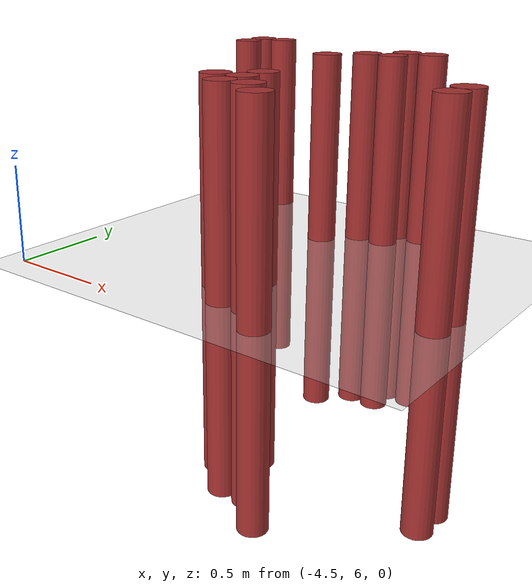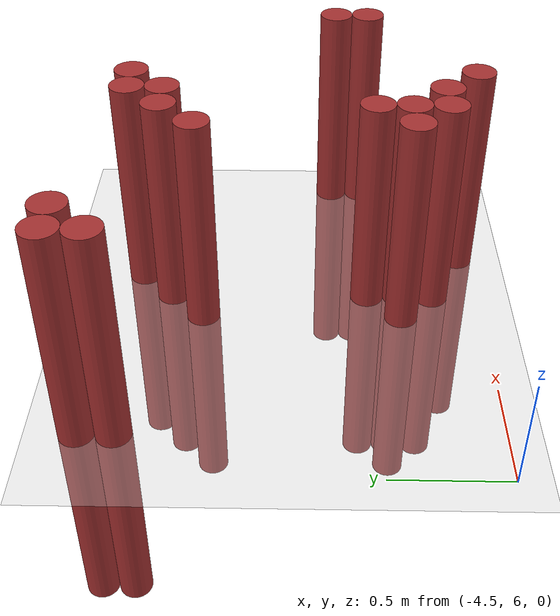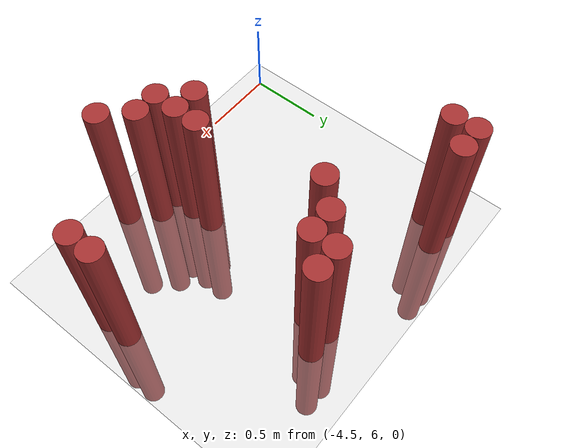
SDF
<sdf version="1.6">
 <world name="default">
  <model name="ground_plane">
   <static>1</static>
   <link name="link">
    <collision name="collision">
     <geometry><plane><normal>0 0 1</normal><size>100 100</size></plane></geometry>
     <surface><friction><ode><mu>100</mu><mu2>50</mu2></ode></friction></surface>
    </collision>
    <visual name="visual">
     <cast_shadows>0</cast_shadows>
     <geometry><plane><normal>0 0 1</normal><size>100 100</size></plane></geometry>
     <material>
      <script><uri>file://media/materials/scripts/gazebo.material</uri><name>Gazebo/Grey</name></script>
     </material>
    </visual>
   </link>
  </model>
  <model name="unit_cylinder_130">
   <static>1</static>
   <pose>-4.275000 7.575000 0.000000 0.000000 0.000000 0.000000</pose>
   <link name="link">
    <inertial>
     <mass>1</mass>
     <inertia><ixx>0.145833</ixx><ixy>0</ixy><ixz>0</ixz><iyy>0.145833</iyy><iyz>0</iyz><izz>0.125</izz></inertia>
    </inertial>
    <collision name="collision">
     <geometry><cylinder><radius>0.075000</radius><length>2</length></cylinder></geometry>
    </collision>
    <visual name="visual">
     <geometry><cylinder><radius>0.075000</radius><length>2</length></cylinder></geometry>
     <material>
      <ambient>0.648000 0.192000 0.192000 1</ambient>
      <diffuse>0.648000 0.192000 0.192000 1</diffuse>
     </material>
     <material>
      <script><name>Gazebo/Grey</name><uri>file://media/materials/scripts/gazebo.material</uri></script>
     </material>
    </visual>
   </link>
  </model>
  <model name="unit_cylinder_131">
   <static>1</static>
   <pose>-4.275000 7.725000 0.000000 0.000000 0.000000 0.000000</pose>
   <link name="link">
    <inertial>
     <mass>1</mass>
     <inertia><ixx>0.145833</ixx><ixy>0</ixy><ixz>0</ixz><iyy>0.145833</iyy><iyz>0</iyz><izz>0.125</izz></inertia>
    </inertial>
    <collision name="collision">
     <geometry><cylinder><radius>0.075000</radius><length>2</length></cylinder></geometry>
    </collision>
    <visual name="visual">
     <geometry><cylinder><radius>0.075000</radius><length>2</length></cylinder></geometry>
     <material>
      <ambient>0.648000 0.192000 0.192000 1</ambient>
      <diffuse>0.648000 0.192000 0.192000 1</diffuse>
     </material>
     <material>
      <script><name>Gazebo/Grey</name><uri>file://media/materials/scripts/gazebo.material</uri></script>
     </material>
    </visual>
   </link>
  </model>
  <model name="unit_cylinder_140">
   <static>1</static>
   <pose>-4.125000 7.725000 0.000000 0.000000 0.000000 0.000000</pose>
   <link name="link">
    <inertial>
     <mass>1</mass>
     <inertia><ixx>0.145833</ixx><ixy>0</ixy><ixz>0</ixz><iyy>0.145833</iyy><iyz>0</iyz><izz>0.125</izz></inertia>
    </inertial>
    <collision name="collision">
     <geometry><cylinder><radius>0.075000</radius><length>2</length></cylinder></geometry>
    </collision>
    <visual name="visual">
     <geometry><cylinder><radius>0.075000</radius><length>2</length></cylinder></geometry>
     <material>
      <ambient>0.648000 0.192000 0.192000 1</ambient>
      <diffuse>0.648000 0.192000 0.192000 1</diffuse>
     </material>
     <material>
      <script><name>Gazebo/Grey</name><uri>file://media/materials/scripts/gazebo.material</uri></script>
     </material>
    </visual>
   </link>
  </model>
  <model name="unit_cylinder_151">
   <static>1</static>
   <pose>-3.525000 6.375000 0.000000 0.000000 0.000000 0.000000</pose>
   <link name="link">
    <inertial>
     <mass>1</mass>
     <inertia><ixx>0.145833</ixx><ixy>0</ixy><ixz>0</ixz><iyy>0.145833</iyy><iyz>0</iyz><izz>0.125</izz></inertia>
    </inertial>
    <collision name="collision">
     <geometry><cylinder><radius>0.075000</radius><length>2</length></cylinder></geometry>
    </collision>
    <visual name="visual">
     <geometry><cylinder><radius>0.075000</radius><length>2</length></cylinder></geometry>
     <material>
      <ambient>0.648000 0.192000 0.192000 1</ambient>
      <diffuse>0.648000 0.192000 0.192000 1</diffuse>
     </material>
     <material>
      <script><name>Gazebo/Grey</name><uri>file://media/materials/scripts/gazebo.material</uri></script>
     </material>
    </visual>
   </link>
  </model>
  <model name="unit_cylinder_152">
   <static>1</static>
   <pose>-3.525000 7.275000 0.000000 0.000000 0.000000 0.000000</pose>
   <link name="link">
    <inertial>
     <mass>1</mass>
     <inertia><ixx>0.145833</ixx><ixy>0</ixy><ixz>0</ixz><iyy>0.145833</iyy><iyz>0</iyz><izz>0.125</izz></inertia>
    </inertial>
    <collision name="collision">
     <geometry><cylinder><radius>0.075000</radius><length>2</length></cylinder></geometry>
    </collision>
    <visual name="visual">
     <geometry><cylinder><radius>0.075000</radius><length>2</length></cylinder></geometry>
     <material>
      <ambient>0.648000 0.192000 0.192000 1</ambient>
      <diffuse>0.648000 0.192000 0.192000 1</diffuse>
     </material>
     <material>
      <script><name>Gazebo/Grey</name><uri>file://media/materials/scripts/gazebo.material</uri></script>
     </material>
    </visual>
   </link>
  </model>
  <model name="unit_cylinder_154">
   <static>1</static>
   <pose>-3.375000 6.225000 0.000000 0.000000 0.000000 0.000000</pose>
   <link name="link">
    <inertial>
     <mass>1</mass>
     <inertia><ixx>0.145833</ixx><ixy>0</ixy><ixz>0</ixz><iyy>0.145833</iyy><iyz>0</iyz><izz>0.125</izz></inertia>
    </inertial>
    <collision name="collision">
     <geometry><cylinder><radius>0.075000</radius><length>2</length></cylinder></geometry>
    </collision>
    <visual name="visual">
     <geometry><cylinder><radius>0.075000</radius><length>2</length></cylinder></geometry>
     <material>
      <ambient>0.648000 0.192000 0.192000 1</ambient>
      <diffuse>0.648000 0.192000 0.192000 1</diffuse>
     </material>
     <material>
      <script><name>Gazebo/Grey</name><uri>file://media/materials/scripts/gazebo.material</uri></script>
     </material>
    </visual>
   </link>
  </model>
  <model name="unit_cylinder_155">
   <static>1</static>
   <pose>-3.375000 6.375000 0.000000 0.000000 0.000000 0.000000</pose>
   <link name="link">
    <inertial>
     <mass>1</mass>
     <inertia><ixx>0.145833</ixx><ixy>0</ixy><ixz>0</ixz><iyy>0.145833</iyy><iyz>0</iyz><izz>0.125</izz></inertia>
    </inertial>
    <collision name="collision">
     <geometry><cylinder><radius>0.075000</radius><length>2</length></cylinder></geometry>
    </collision>
    <visual name="visual">
     <geometry><cylinder><radius>0.075000</radius><length>2</length></cylinder></geometry>
     <material>
      <ambient>0.648000 0.192000 0.192000 1</ambient>
      <diffuse>0.648000 0.192000 0.192000 1</diffuse>
     </material>
     <material>
      <script><name>Gazebo/Grey</name><uri>file://media/materials/scripts/gazebo.material</uri></script>
     </material>
    </visual>
   </link>
  </model>
  <model name="unit_cylinder_156">
   <static>1</static>
   <pose>-3.375000 6.525000 0.000000 0.000000 0.000000 0.000000</pose>
   <link name="link">
    <inertial>
     <mass>1</mass>
     <inertia><ixx>0.145833</ixx><ixy>0</ixy><ixz>0</ixz><iyy>0.145833</iyy><iyz>0</iyz><izz>0.125</izz></inertia>
    </inertial>
    <collision name="collision">
     <geometry><cylinder><radius>0.075000</radius><length>2</length></cylinder></geometry>
    </collision>
    <visual name="visual">
     <geometry><cylinder><radius>0.075000</radius><length>2</length></cylinder></geometry>
     <material>
      <ambient>0.648000 0.192000 0.192000 1</ambient>
      <diffuse>0.648000 0.192000 0.192000 1</diffuse>
     </material>
     <material>
      <script><name>Gazebo/Grey</name><uri>file://media/materials/scripts/gazebo.material</uri></script>
     </material>
    </visual>
   </link>
  </model>
  <model name="unit_cylinder_157">
   <static>1</static>
   <pose>-3.375000 7.425000 0.000000 0.000000 0.000000 0.000000</pose>
   <link name="link">
    <inertial>
     <mass>1</mass>
     <inertia><ixx>0.145833</ixx><ixy>0</ixy><ixz>0</ixz><iyy>0.145833</iyy><iyz>0</iyz><izz>0.125</izz></inertia>
    </inertial>
    <collision name="collision">
     <geometry><cylinder><radius>0.075000</radius><length>2</length></cylinder></geometry>
    </collision>
    <visual name="visual">
     <geometry><cylinder><radius>0.075000</radius><length>2</length></cylinder></geometry>
     <material>
      <ambient>0.648000 0.192000 0.192000 1</ambient>
      <diffuse>0.648000 0.192000 0.192000 1</diffuse>
     </material>
     <material>
      <script><name>Gazebo/Grey</name><uri>file://media/materials/scripts/gazebo.material</uri></script>
     </material>
    </visual>
   </link>
  </model>
  <model name="unit_cylinder_160">
   <static>1</static>
   <pose>-3.225000 6.225000 0.000000 0.000000 0.000000 0.000000</pose>
   <link name="link">
    <inertial>
     <mass>1</mass>
     <inertia><ixx>0.145833</ixx><ixy>0</ixy><ixz>0</ixz><iyy>0.145833</iyy><iyz>0</iyz><izz>0.125</izz></inertia>
    </inertial>
    <collision name="collision">
     <geometry><cylinder><radius>0.075000</radius><length>2</length></cylinder></geometry>
    </collision>
    <visual name="visual">
     <geometry><cylinder><radius>0.075000</radius><length>2</length></cylinder></geometry>
     <material>
      <ambient>0.648000 0.192000 0.192000 1</ambient>
      <diffuse>0.648000 0.192000 0.192000 1</diffuse>
     </material>
     <material>
      <script><name>Gazebo/Grey</name><uri>file://media/materials/scripts/gazebo.material</uri></script>
     </material>
    </visual>
   </link>
  </model>
  <model name="unit_cylinder_161">
   <static>1</static>
   <pose>-3.225000 7.425000 0.000000 0.000000 0.000000 0.000000</pose>
   <link name="link">
    <inertial>
     <mass>1</mass>
     <inertia><ixx>0.145833</ixx><ixy>0</ixy><ixz>0</ixz><iyy>0.145833</iyy><iyz>0</iyz><izz>0.125</izz></inertia>
    </inertial>
    <collision name="collision">
     <geometry><cylinder><radius>0.075000</radius><length>2</length></cylinder></geometry>
    </collision>
    <visual name="visual">
     <geometry><cylinder><radius>0.075000</radius><length>2</length></cylinder></geometry>
     <material>
      <ambient>0.648000 0.192000 0.192000 1</ambient>
      <diffuse>0.648000 0.192000 0.192000 1</diffuse>
     </material>
     <material>
      <script><name>Gazebo/Grey</name><uri>file://media/materials/scripts/gazebo.material</uri></script>
     </material>
    </visual>
   </link>
  </model>
  <model name="unit_cylinder_162">
   <static>1</static>
   <pose>-3.225000 7.575000 0.000000 0.000000 0.000000 0.000000</pose>
   <link name="link">
    <inertial>
     <mass>1</mass>
     <inertia><ixx>0.145833</ixx><ixy>0</ixy><ixz>0</ixz><iyy>0.145833</iyy><iyz>0</iyz><izz>0.125</izz></inertia>
    </inertial>
    <collision name="collision">
     <geometry><cylinder><radius>0.075000</radius><length>2</length></cylinder></geometry>
    </collision>
    <visual name="visual">
     <geometry><cylinder><radius>0.075000</radius><length>2</length></cylinder></geometry>
     <material>
      <ambient>0.648000 0.192000 0.192000 1</ambient>
      <diffuse>0.648000 0.192000 0.192000 1</diffuse>
     </material>
     <material>
      <script><name>Gazebo/Grey</name><uri>file://media/materials/scripts/gazebo.material</uri></script>
     </material>
    </visual>
   </link>
  </model>
  <model name="unit_cylinder_168">
   <static>1</static>
   <pose>-3.075000 6.075000 0.000000 0.000000 0.000000 0.000000</pose>
   <link name="link">
    <inertial>
     <mass>1</mass>
     <inertia><ixx>0.145833</ixx><ixy>0</ixy><ixz>0</ixz><iyy>0.145833</iyy><iyz>0</iyz><izz>0.125</izz></inertia>
    </inertial>
    <collision name="collision">
     <geometry><cylinder><radius>0.075000</radius><length>2</length></cylinder></geometry>
    </collision>
    <visual name="visual">
     <geometry><cylinder><radius>0.075000</radius><length>2</length></cylinder></geometry>
     <material>
      <ambient>0.648000 0.192000 0.192000 1</ambient>
      <diffuse>0.648000 0.192000 0.192000 1</diffuse>
     </material>
     <material>
      <script><name>Gazebo/Grey</name><uri>file://media/materials/scripts/gazebo.material</uri></script>
     </material>
    </visual>
   </link>
  </model>
  <model name="unit_cylinder_169">
   <static>1</static>
   <pose>-3.075000 7.575000 0.000000 0.000000 0.000000 0.000000</pose>
   <link name="link">
    <inertial>
     <mass>1</mass>
     <inertia><ixx>0.145833</ixx><ixy>0</ixy><ixz>0</ixz><iyy>0.145833</iyy><iyz>0</iyz><izz>0.125</izz></inertia>
    </inertial>
    <collision name="collision">
     <geometry><cylinder><radius>0.075000</radius><length>2</length></cylinder></geometry>
    </collision>
    <visual name="visual">
     <geometry><cylinder><radius>0.075000</radius><length>2</length></cylinder></geometry>
     <material>
      <ambient>0.648000 0.192000 0.192000 1</ambient>
      <diffuse>0.648000 0.192000 0.192000 1</diffuse>
     </material>
     <material>
      <script><name>Gazebo/Grey</name><uri>file://media/materials/scripts/gazebo.material</uri></script>
     </material>
    </visual>
   </link>
  </model>
  <model name="unit_cylinder_171">
   <static>1</static>
   <pose>-2.475000 6.525000 0.000000 0.000000 0.000000 0.000000</pose>
   <link name="link">
    <inertial>
     <mass>1</mass>
     <inertia><ixx>0.145833</ixx><ixy>0</ixy><ixz>0</ixz><iyy>0.145833</iyy><iyz>0</iyz><izz>0.125</izz></inertia>
    </inertial>
    <collision name="collision">
     <geometry><cylinder><radius>0.075000</radius><length>2</length></cylinder></geometry>
    </collision>
    <visual name="visual">
     <geometry><cylinder><radius>0.075000</radius><length>2</length></cylinder></geometry>
     <material>
      <ambient>0.648000 0.192000 0.192000 1</ambient>
      <diffuse>0.648000 0.192000 0.192000 1</diffuse>
     </material>
     <material>
      <script><name>Gazebo/Grey</name><uri>file://media/materials/scripts/gazebo.material</uri></script>
     </material>
    </visual>
   </link>
  </model>
  <model name="unit_cylinder_172">
   <static>1</static>
   <pose>-2.475000 6.675000 0.000000 0.000000 0.000000 0.000000</pose>
   <link name="link">
    <inertial>
     <mass>1</mass>
     <inertia><ixx>0.145833</ixx><ixy>0</ixy><ixz>0</ixz><iyy>0.145833</iyy><iyz>0</iyz><izz>0.125</izz></inertia>
    </inertial>
    <collision name="collision">
     <geometry><cylinder><radius>0.075000</radius><length>2</length></cylinder></geometry>
    </collision>
    <visual name="visual">
     <geometry><cylinder><radius>0.075000</radius><length>2</length></cylinder></geometry>
     <material>
      <ambient>0.648000 0.192000 0.192000 1</ambient>
      <diffuse>0.648000 0.192000 0.192000 1</diffuse>
     </material>
     <material>
      <script><name>Gazebo/Grey</name><uri>file://media/materials/scripts/gazebo.material</uri></script>
     </material>
    </visual>
   </link>
  </model>
 </world>
</sdf>
